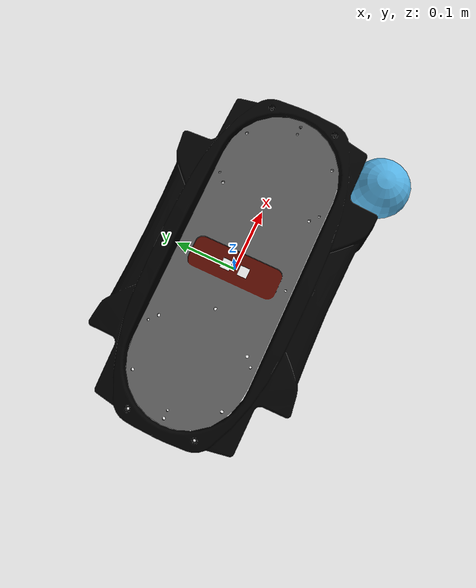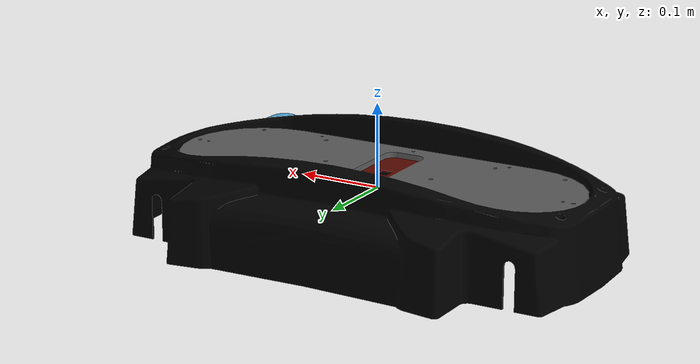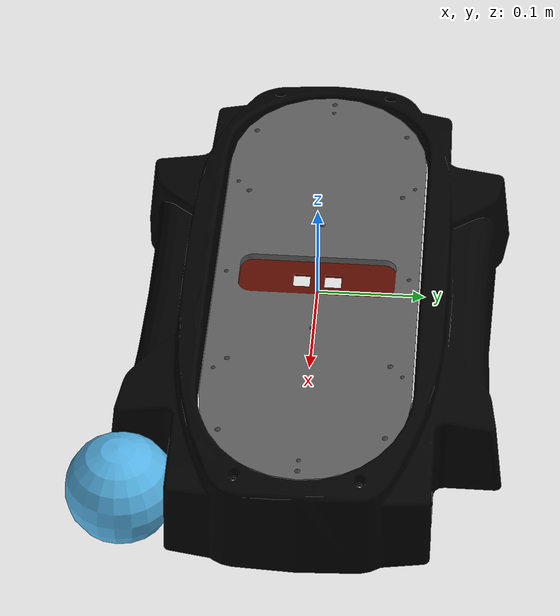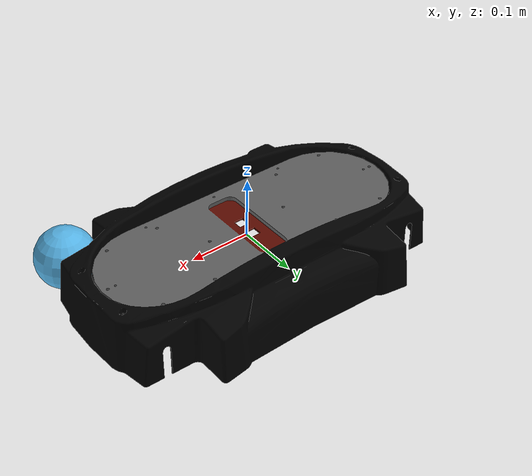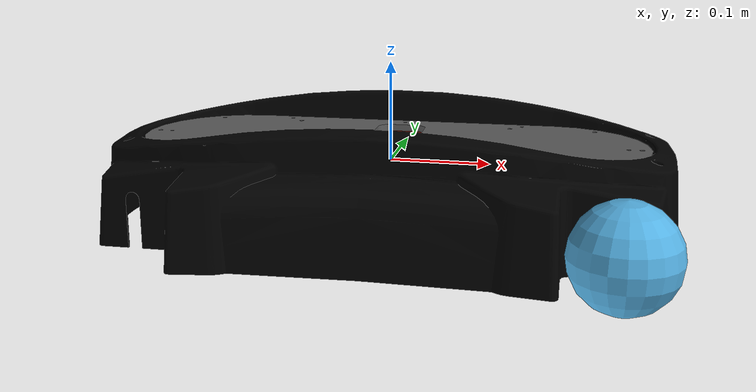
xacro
<?xml version="1.0"?>
<!-- Refactored by Arn-O -->
<robot name="youbot" xmlns:xacro="http://www.ros.org/wiki/xacro">

  <!-- The following included files set up definitions of parts of the robot body -->
  <xacro:include filename="$(find youbot_description)/urdf/common.xacro" />

  <!-- youbot base -->
  <xacro:include filename="$(find youbot_description)/urdf/youbot_base/base.urdf.xacro" />

  <!-- generic simulator_gazebo plugins for starting mechanism control, ros time, ros battery -->
  <xacro:include filename="$(find youbot_description)/gazebo/gazebo.urdf.xacro" />

  <xacro:youbot_base/>

</robot>

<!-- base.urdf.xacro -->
<!-- Refactored by Arn-O -->

<robot name="youbot" xmlns:xacro="http://www.ros.org/wiki/xacro">

  <!-- includes -->
  <xacro:include filename="$(find youbot_description)/urdf/youbot_base/specs.urdf.xacro" />
  <xacro:include filename="$(find youbot_description)/urdf/youbot_base/base.gazebo.xacro" />

  <xacro:macro name="youbot_base">

    <!-- ### links ### -->
    <!-- base -->
    <link name="base_link">
      <inertial>
        <mass value="${base_mass}" />
        <origin xyz="${base_pose_x} ${base_pose_y} ${base_pose_z}" />
        <inertia ixx="1.000" ixy="0.000" ixz="0.000" iyy="1.000" iyz="0.000" izz="1.000" />
      </inertial>

      <visual>
        <origin xyz="0 0 0" rpy="0 0 0" />
        <geometry>
          <mesh filename="package://youbot_description/meshes/youbot_base/base_frame.dae"/>
        </geometry>
      </visual>
    </link>

    <!-- wheels -->
    <!-- front left wheel -->
    <link name="wheel_link_fl">
      <inertial>
        <mass value="${wheel_mass}" />
        <inertia  ixx="0.010" ixy="0.000" ixz="0.000" iyy="0.010" iyz="0.000" izz="0.010" />
      </inertial>

      <visual>
        <geometry>
          <sphere radius="${wheel_radius}" />
        </geometry>
      </visual>

      <collision>
        <geometry>
          <sphere radius="${wheel_radius}" />
        </geometry>
      </collision>
    </link>

    <!-- ### joints ### -->
    <joint name="wheel_fl_joint" type="fixed">
      <origin xyz="${wheel_fl_pose_x} ${wheel_fl_pose_y} ${wheel_fl_pose_z}" rpy="0 0 0" />
      <parent link="base_link"/>
      <child link="wheel_link_fl" />
    </joint>

    <xacro:youbot_base_gazebo />

  </xacro:macro>

</robot>

    <!-- extensions -->

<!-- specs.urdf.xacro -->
<!-- Refactored by Arn-O -->

<robot name="youbot" xmlns:xacro="http://www.ros.org/wiki/xacro">

  <!-- base -->
  <property name="base_mass" value="19.803" />
  <property name="base_pose_x" value="0.000" />
  <property name="base_pose_y" value="0.000" />
  <property name="base_pose_z" value="0.084" />

  <!-- wheels -->
  <property name="wheel_mass" value="1.400" />
  <property name="wheel_radius" value="0.050" />

  <property name="wheel_fl_pose_x" value="0.228" />
  <property name="wheel_fl_pose_y" value="-0.158" />
  <property name="wheel_fl_pose_z" value="-0.034" />

</robot>
